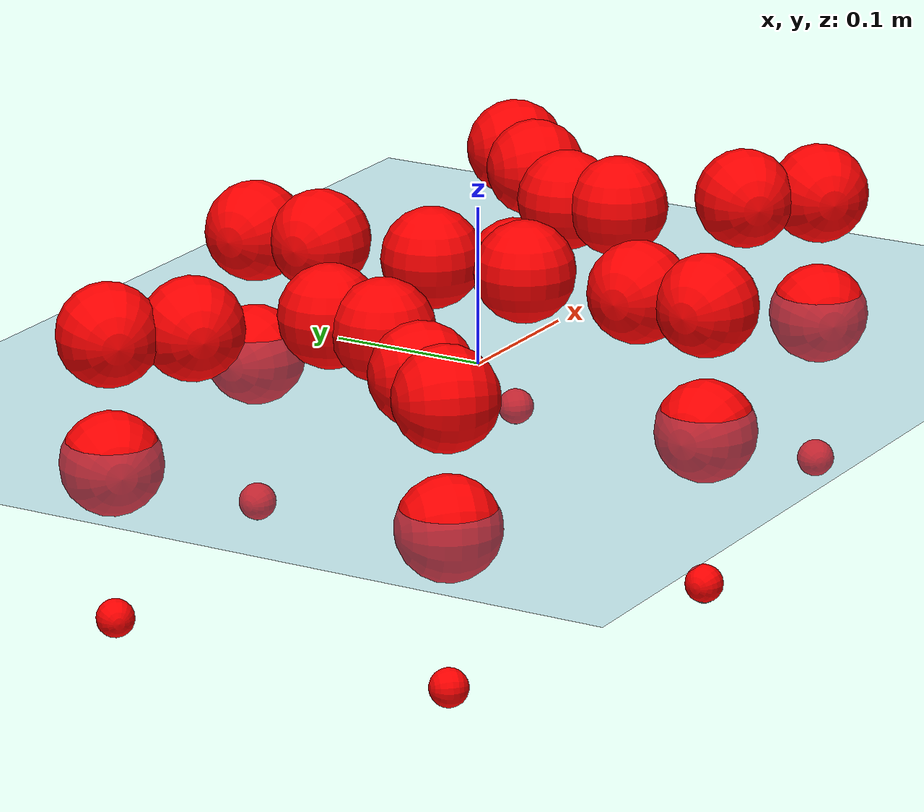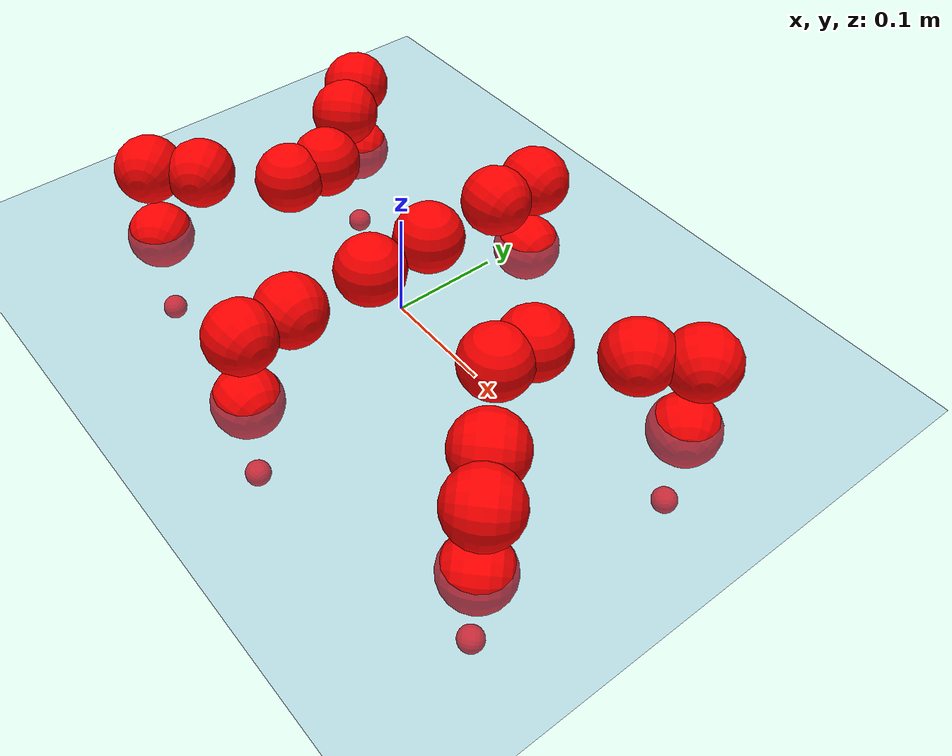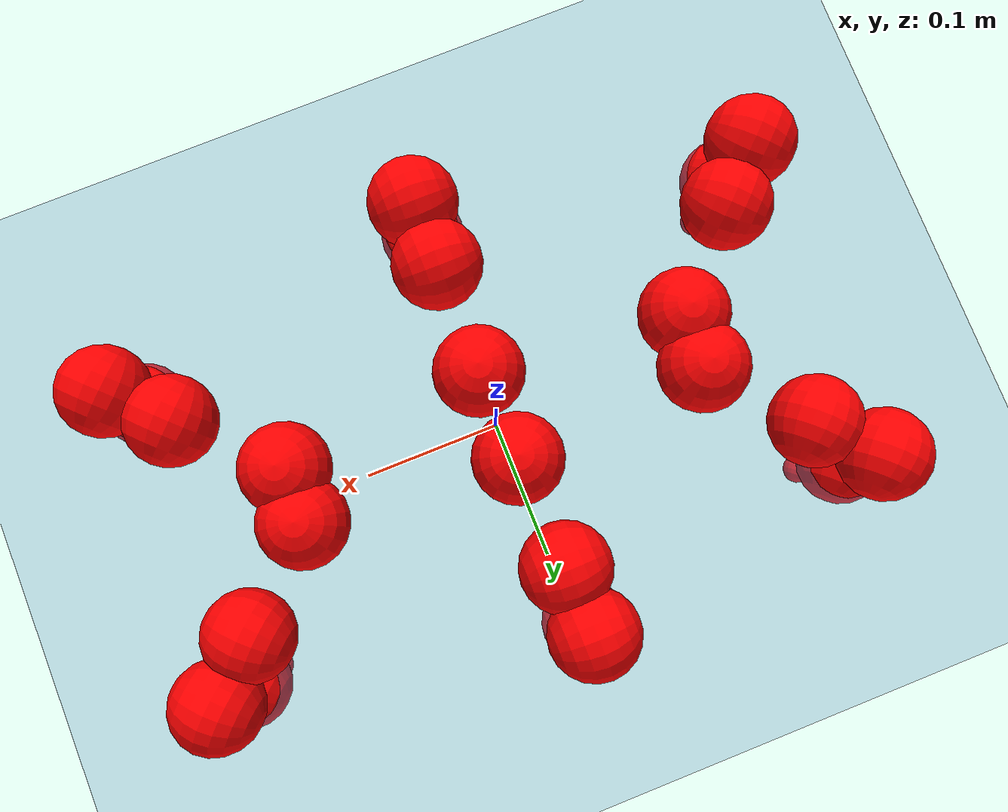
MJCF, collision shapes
<mujoco model="Golem">
  <compiler angle="radian" assetdir="assets" balanceinertia="true" inertiafromgeom="false"/>

  <option timestep="0.005" density="1.2" viscosity="2e-05"/>

  <size nkey="1"/>

  <visual>
    <quality shadowsize="8192"/>
    <map shadowclip="0.5"/>
  </visual>

  <default>
    <default class="/">
      <joint armature="0.01" damping="0.01" frictionloss="0.01"/>
      <geom contype="0" conaffinity="0" group="1" solref="-1000 -80"/>
      <site size="0.01 0.005 0.005" group="5"/>
      <general forcelimited="true" biastype="affine" gainprm="25" biasprm="0 -25 -0.5"/>
      <default class="visual">
        <geom type="mesh" group="2"/>
      </default>
      <default class="collision">
        <geom group="3"/>
      </default>
      <default class="foot">
        <geom size="0.01 0 0" condim="6" group="4" priority="1" solimp="0.015 1 0.01"/>
      </default>
      <default class="reward_collision_sphere">
        <geom group="5" rgba="1 0 0 1"/>
      </default>
    </default>
  </default>

  <asset>
    <texture type="skybox" colorspace="auto" name="//unnamed_texture_0" builtin="gradient" rgb1="0.95 0.95 0.95" rgb2="0.95 0.95 0.95" width="100" height="600"/>
    <texture type="2d" colorspace="auto" name="texplane" builtin="checker" rgb1="0.345 0.575 0.748" rgb2="0.345 0.575 0.748" markrgb="1 1 1" width="512" height="512"/>
    <material name="MatPlane" class="/" texture="texplane" texuniform="true" texrepeat="2 2" specular="0.9"/>
    <mesh name="body" class="/" file="body.stl" scale="0.001 0.001 0.001"/>
    <mesh name="coxa" class="/" file="coxa.stl" scale="0.001 0.001 0.001"/>
    <mesh name="femur" class="/" file="femur.stl" scale="0.001 0.001 0.001"/>
    <mesh name="tibia" class="/" file="tibia.stl" scale="0.001 0.001 0.001"/>
    <mesh name="tarsus" class="/" file="tarsus.stl" scale="0.001 0.001 0.001"/>
  </asset>

  <worldbody>
    <geom name="floor" class="/" size="100 100 0.125" type="plane" group="0" material="MatPlane"/>
    <light name="toplight_shadow" class="/" pos="0 0 5" dir="0.0990148 0.0990148 -0.990148" type="directional" ambient="0.04 0.04 0.04" diffuse="0.55 0.55 0.55" specular="0.12 0.12 0.12"/>
    <light name="toplight_fill" class="/" pos="0 0 5" dir="0.0990148 0.0990148 -0.990148" type="directional" castshadow="false" ambient="0.04 0.04 0.04" diffuse="0.3 0.3 0.3" specular="0.08 0.08 0.08"/>
    <body name="trunk" pos="0.00017532 -0.000137707 -0.000332482" quat="1 -0.000866503 0.000285543 0.000210375">
      <inertial pos="-0.0004628 -0.000220909 -0.00363067" quat="1 -0.000224275 0.000530938 7.61843e-06" mass="1.85403" diaginertia="0.00612401 0.000175937 0.0106855"/>
      <joint name="//unnamed_joint_0" type="free"/>
      <geom name="//unnamed_geom_1" class="/" pos="0 0 0.0649131" quat="1 0 0 0" type="mesh" rgba="0.9 0.9 0.9 1" mesh="body"/>
      <site name="imu" class="/" pos="0.125941 0.00284774 0.101226" size="0.00788868"/>
      <camera name="track" class="/" pos="0 -0.891308 0" quat="0.707107 0.707107 0 0" mode="trackcom"/>
      <camera name="ego_camera" class="/" pos="0.117869 0 0.101427" quat="-0.5 -0.5 0.5 0.5"/>
      <body name="coxa_RR" pos="-0.162216 -0.037066 0.0650434" quat="0.382161 -0.000260611 0.00075428 -0.924095">
        <inertial pos="-0.000318266 0.000270743 0.00118653" quat="0.999999 0.000399963 -7.4502e-05 -0.00111704" mass="0.0990141" diaginertia="0.0061635 0.000176384 0.0108455"/>
        <joint name="coxa_joint_RR" class="/" pos="0 0 0" axis="-0.00138276 0.00575449 -0.999982" range="-3.14804 3.11067" armature="0.00788049" damping="0.00363953" frictionloss="0.00768412"/>
        <geom name="//unnamed_geom_2" class="/" type="mesh" rgba="0.2 0.2 0.2 1" mesh="coxa"/>
        <geom name="//unnamed_geom_3" class="reward_collision_sphere" size="0.0315547" pos="-0.0272005 0 0"/>
        <body name="femur_RR" pos="0.0552495 0.00211398 -0.00121591" quat="0.500023 -0.500009 0.500072 0.499895">
          <inertial pos="-0.000183366 0.000121954 0.000193484" quat="0.999999 0.00088601 -0.000209483 0.00141125" mass="0.0984846" diaginertia="0.00607418 0.000174572 0.0108652"/>
          <joint name="femur_joint_RR" class="/" pos="0 0 0" axis="-4.46427e-05 -0.00294401 -0.999996" range="-3.11305 3.13554" armature="0.00750805" damping="0.0011786" frictionloss="0.00818589"/>
          <geom name="//unnamed_geom_4" class="/" type="mesh" rgba="0.9 0.9 0.9 1" mesh="femur"/>
          <geom name="//unnamed_geom_5" class="reward_collision_sphere" size="0.0315547"/>
          <body name="tibia_RR" pos="-0.000792287 -0.0474803 0.00183169" quat="7.34269e-06 1 -5.33536e-06 -1.47481e-06">
            <inertial pos="0.00056533 -5.56648e-05 0.000300554" quat="0.999998 -0.000450148 -0.00159159 0.00104258" mass="0.0990753" diaginertia="0.00619601 0.000175479 0.0106281"/>
            <joint name="tibia_joint_RR" class="/" pos="0 0 0" axis="0.000840072 -0.00611678 0.999981" range="-3.10983 3.13666" armature="0.00766392" damping="0" frictionloss="0.00775137"/>
            <geom name="//unnamed_geom_6" class="/" type="mesh" rgba="0.2 0.2 0.2 1" mesh="tibia"/>
            <geom name="//unnamed_geom_7" class="reward_collision_sphere" size="0.0315547"/>
            <body name="tarsus_RR" pos="0.0781014 0.000176692 -0.00140391" quat="1 8.83762e-07 0.000260693 0.000324569">
              <inertial pos="0.055624 0.000475979 -4.11625e-05" quat="0.500666 0.49881 0.500126 0.500396" mass="0.0969202" diaginertia="0.00601622 0.000175433 0.0105821"/>
              <joint name="tarsus_joint_RR" class="/" pos="0 0 0" axis="-0.000824824 -0.000323205 1" range="-3.12013 3.13074" armature="0.00813309" damping="0" frictionloss="0.00794844"/>
              <geom name="//unnamed_geom_8" class="/" type="mesh" rgba="0.9 0.9 0.9 1" mesh="tarsus"/>
              <geom name="foot_1" class="foot" size="0.0075001" pos="0.101548 0 0" quat="0 -0.707107 0 0.707107"/>
              <geom name="//unnamed_geom_10" class="reward_collision_sphere" size="0.0315547"/>
              <geom name="//unnamed_geom_11" class="reward_collision_sphere" size="0.011833" pos="0.0974684 0 0"/>
              <site name="foot_1" class="foot" pos="0.101548 0 0" quat="0 -0.707107 0 0.707107" size="0.00788868"/>
            </body>
          </body>
        </body>
      </body>
      <body name="coxa_RM" pos="-0.000276587 -0.0594975 0.0648312" quat="0.707518 0.000223133 -0.000128017 -0.706695">
        <inertial pos="-0.000477755 -0.0010097 0.000222889" quat="0.999998 -0.00046813 0.00188417 0.000224795" mass="0.0976359" diaginertia="0.00605521 0.00017712 0.0108549"/>
        <joint name="coxa_joint_RM" class="/" pos="0 0 0" axis="0.00588008 -0.00435148 -0.999973" range="-3.14138 3.15254" armature="0.00856159" damping="0.00433249" frictionloss="0.00785894"/>
        <geom name="//unnamed_geom_12" class="/" type="mesh" rgba="0.2 0.2 0.2 1" mesh="coxa"/>
        <geom name="//unnamed_geom_13" class="reward_collision_sphere" size="0.0315547" pos="-0.0272005 0 0"/>
        <body name="femur_RM" pos="0.0515167 -0.000646851 -0.000576563" quat="0.499991 -0.499955 0.500019 0.500036">
          <inertial pos="-0.000327041 -0.000425092 0.000166747" quat="0.999999 0.00102144 -0.001178 -0.000179534" mass="0.0973164" diaginertia="0.0060234 0.000178485 0.0108979"/>
          <joint name="femur_joint_RM" class="/" pos="0 0 0" axis="0.00190128 -0.0031604 -0.999993" range="-3.12211 3.14286" armature="0.00772605" damping="0.00105036" frictionloss="0.00783805"/>
          <geom name="//unnamed_geom_14" class="/" type="mesh" rgba="0.9 0.9 0.9 1" mesh="femur"/>
          <geom name="//unnamed_geom_15" class="reward_collision_sphere" size="0.0315547"/>
          <body name="tibia_RM" pos="0.000896403 -0.0466822 -0.000430049" quat="-6.8959e-05 1 -1.78495e-05 0.000353236">
            <inertial pos="-0.000833076 -0.000866626 -0.0010281" quat="0.99999 -0.00146535 0.00325469 0.0025608" mass="0.0976684" diaginertia="0.00620135 0.000175474 0.0107965"/>
            <joint name="tibia_joint_RM" class="/" pos="0 0 0" axis="0.00218101 0.000221223 0.999998" range="-3.13685 3.15728" armature="0.00834481" damping="0.000281447" frictionloss="0.00857803"/>
            <geom name="//unnamed_geom_16" class="/" type="mesh" rgba="0.2 0.2 0.2 1" mesh="tibia"/>
            <geom name="//unnamed_geom_17" class="reward_collision_sphere" size="0.0315547"/>
            <body name="tarsus_RM" pos="0.0784073 0.000879935 0.00155225" quat="1 3.53449e-06 0.00012236 -4.10318e-05">
              <inertial pos="0.0543301 0.00157723 0.000142667" quat="0.500145 0.500084 0.500165 0.499605" mass="0.0982733" diaginertia="0.00606356 0.000173756 0.0107705"/>
              <joint name="tarsus_joint_RM" class="/" pos="0 0 0" axis="-0.000682681 -0.000300347 1" range="-3.10921 3.12052" armature="0.00861076" damping="0.000341369" frictionloss="0.00791054"/>
              <geom name="//unnamed_geom_18" class="/" type="mesh" rgba="0.9 0.9 0.9 1" mesh="tarsus"/>
              <geom name="foot_2" class="foot" size="0.00833149" pos="0.101548 0 0" quat="0 -0.707107 0 0.707107"/>
              <geom name="//unnamed_geom_20" class="reward_collision_sphere" size="0.0315547"/>
              <geom name="//unnamed_geom_21" class="reward_collision_sphere" size="0.011833" pos="0.0974684 0 0"/>
              <site name="foot_2" class="foot" pos="0.101548 0 0" quat="0 -0.707107 0 0.707107" size="0.00788868"/>
            </body>
          </body>
        </body>
      </body>
      <body name="coxa_RF" pos="0.161629 -0.0377869 0.0670062" quat="0.923941 -9.56259e-05 0.000321083 -0.382535">
        <inertial pos="6.73363e-05 -0.00221494 1.11997e-05" quat="1 6.20978e-05 -0.000301112 0.000221525" mass="0.099314" diaginertia="0.00614606 0.000176262 0.0107596"/>
        <joint name="coxa_joint_RF" class="/" pos="0 0 0" axis="0.00321871 0.00333894 -0.999989" range="-3.11886 3.16532" armature="0.00807831" damping="0" frictionloss="0.00768815"/>
        <geom name="//unnamed_geom_22" class="/" type="mesh" rgba="0.2 0.2 0.2 1" mesh="coxa"/>
        <geom name="//unnamed_geom_23" class="reward_collision_sphere" size="0.0315547" pos="-0.0272005 0 0"/>
        <body name="femur_RF" pos="0.0562484 0.00125765 -0.0017619" quat="0.499478 -0.500222 0.500194 0.500106">
          <inertial pos="6.41498e-05 -0.000520075 0.00139711" quat="0.999972 -0.00427464 -0.00589789 0.00173324" mass="0.09879" diaginertia="0.00616463 0.000172666 0.0107634"/>
          <joint name="femur_joint_RF" class="/" pos="0 0 0" axis="0.00249403 0.00300518 -0.999992" range="-3.13976 3.13703" armature="0.00801827" damping="0" frictionloss="0.0073907"/>
          <geom name="//unnamed_geom_24" class="/" type="mesh" rgba="0.9 0.9 0.9 1" mesh="femur"/>
          <geom name="//unnamed_geom_25" class="reward_collision_sphere" size="0.0315547"/>
          <body name="tibia_RF" pos="0.000321539 -0.04943 -0.000224189" quat="-9.81414e-05 1 6.94856e-05 0.000139529">
            <inertial pos="0.000302542 -0.000382606 0.00093038" quat="1 -0.000271193 -0.000579582 3.73958e-05" mass="0.0977645" diaginertia="0.00610141 0.000177431 0.0108281"/>
            <joint name="tibia_joint_RF" class="/" pos="0 0 0" axis="0.00227123 -0.00266463 0.999994" range="-3.13545 3.14286" armature="0.00817969" damping="0.00939699" frictionloss="0.00788261"/>
            <geom name="//unnamed_geom_26" class="/" type="mesh" rgba="0.2 0.2 0.2 1" mesh="tibia"/>
            <geom name="//unnamed_geom_27" class="reward_collision_sphere" size="0.0315547"/>
            <body name="tarsus_RF" pos="0.0796384 0.000969547 0.000322844" quat="1 0.000424323 0.00047586 -0.000211134">
              <inertial pos="0.0529582 9.54948e-05 0.00177959" quat="0.49986 0.499805 0.500917 0.499418" mass="0.0972291" diaginertia="0.00611646 0.000171825 0.0105666"/>
              <joint name="tarsus_joint_RF" class="/" pos="0 0 0" axis="-0.0096403 -0.00313207 0.999949" range="-3.10881 3.12876" armature="0.00789863" damping="0" frictionloss="0.00783259"/>
              <geom name="//unnamed_geom_28" class="/" type="mesh" rgba="0.9 0.9 0.9 1" mesh="tarsus"/>
              <geom name="foot_3" class="foot" size="0.00783953" pos="0.101548 0 0" quat="0 -0.707107 0 0.707107"/>
              <geom name="//unnamed_geom_30" class="reward_collision_sphere" size="0.0315547"/>
              <geom name="//unnamed_geom_31" class="reward_collision_sphere" size="0.011833" pos="0.0974684 0 0"/>
              <site name="foot_3" class="foot" pos="0.101548 0 0" quat="0 -0.707107 0 0.707107" size="0.00788868"/>
            </body>
          </body>
        </body>
      </body>
      <body name="coxa_LR" pos="-0.15985 0.0395363 0.0672378" quat="0.38265 0.000289342 0.000646373 0.923893">
        <inertial pos="0.00152924 -0.00050523 0.00146924" quat="0.999998 0.00112136 -0.000323044 -0.00155118" mass="0.0972321" diaginertia="0.00612202 0.000174131 0.0106326"/>
        <joint name="coxa_joint_LR" class="/" pos="0 0 0" axis="0.00277337 -0.00488678 -0.999984" range="-3.13772 3.14683" armature="0.00825464" damping="0.00744584" frictionloss="0.00800829"/>
        <geom name="//unnamed_geom_32" class="/" type="mesh" rgba="0.2 0.2 0.2 1" mesh="coxa"/>
        <geom name="//unnamed_geom_33" class="reward_collision_sphere" size="0.0315547" pos="-0.0272005 0 0"/>
        <body name="femur_LR" pos="0.0549868 -0.00399873 -0.0021233" quat="0.500244 -0.499335 0.500178 0.500243">
          <inertial pos="-0.00112353 -0.00053719 0.000291872" quat="0.999999 -0.00156948 -4.74785e-05 0.00018467" mass="0.0971841" diaginertia="0.00609187 0.000174944 0.0105507"/>
          <joint name="femur_joint_LR" class="/" pos="0 0 0" axis="-0.0030782 0.000452974 0.999995" range="-3.15629 3.17706" armature="0.00776396" damping="0.00804635" frictionloss="0.00858237"/>
          <geom name="//unnamed_geom_34" class="/" type="mesh" rgba="0.9 0.9 0.9 1" mesh="femur"/>
          <geom name="//unnamed_geom_35" class="reward_collision_sphere" size="0.0315547"/>
          <body name="tibia_LR" pos="0.00033948 -0.0499265 -0.00249732" quat="-0.000104274 1 0.000161506 -0.000203534">
            <inertial pos="-0.00102473 -2.48664e-05 0.000200334" quat="0.999997 -0.000938772 -0.00150688 0.00183112" mass="0.0989517" diaginertia="0.00611242 0.0001756 0.0107244"/>
            <joint name="tibia_joint_LR" class="/" pos="0 0 0" axis="0.000629898 0.000470273 -1" range="-3.15191 3.11787" armature="0.00728177" damping="0" frictionloss="0.00819613"/>
            <geom name="//unnamed_geom_36" class="/" type="mesh" rgba="0.2 0.2 0.2 1" mesh="tibia"/>
            <geom name="//unnamed_geom_37" class="reward_collision_sphere" size="0.0315547"/>
            <body name="tarsus_LR" pos="0.0796697 -0.000249091 3.16768e-05" quat="1 1.5353e-05 0.000280741 7.09366e-05">
              <inertial pos="0.055697 0.000994364 0.000288435" quat="0.499492 0.500509 0.499946 0.500052" mass="0.0983404" diaginertia="0.00611181 0.000177723 0.010681"/>
              <joint name="tarsus_joint_LR" class="/" pos="0 0 0" axis="-0.001876 -0.000718276 -0.999998" range="-3.11154 3.13739" armature="0.00784224" damping="0" frictionloss="0.0080571"/>
              <geom name="//unnamed_geom_38" class="/" type="mesh" rgba="0.9 0.9 0.9 1" mesh="tarsus"/>
              <geom name="foot_4" class="foot" size="0.00756572" pos="0.101548 0 0" quat="0.707107 0 -0.707107 0"/>
              <geom name="//unnamed_geom_40" class="reward_collision_sphere" size="0.0315547"/>
              <geom name="//unnamed_geom_41" class="reward_collision_sphere" size="0.011833" pos="0.0974684 0 0"/>
              <site name="foot_4" class="foot" pos="0.101548 0 0" quat="0.707107 0 -0.707107 0" size="0.00788868"/>
            </body>
          </body>
        </body>
      </body>
      <body name="coxa_LM" pos="-0.00308933 0.0588273 0.0646127" quat="0.706886 0.000403402 0.00110281 0.707327">
        <inertial pos="0.0011605 -0.000169017 0.000442116" quat="0.999997 0.00246317 0.000712408 -0.000605464" mass="0.101655" diaginertia="0.00641011 0.00018021 0.0108617"/>
        <joint name="coxa_joint_LM" class="/" pos="0 0 0" axis="0.000367236 0.00121236 -0.999999" stiffness="0.00389336" range="-3.15114 3.13761" armature="0.00793732" damping="0.00695181" frictionloss="0.0080709"/>
        <geom name="//unnamed_geom_42" class="/" type="mesh" rgba="0.2 0.2 0.2 1" mesh="coxa"/>
        <geom name="//unnamed_geom_43" class="reward_collision_sphere" size="0.0315547" pos="-0.0272005 0 0"/>
        <body name="femur_LM" pos="0.0509721 0.00230376 0.000306033" quat="0.499959 -0.500176 0.500018 0.499847">
          <inertial pos="-7.88632e-05 7.44909e-05 -0.000251727" quat="0.999996 0.000854796 -0.00136205 0.00210916" mass="0.0960305" diaginertia="0.00605341 0.000171626 0.0104997"/>
          <joint name="femur_joint_LM" class="/" pos="0 0 0" axis="-5.26859e-05 -0.000225628 1" range="-3.14609 3.1299" armature="0.00818804" damping="0" frictionloss="0.00775127"/>
          <geom name="//unnamed_geom_44" class="/" type="mesh" rgba="0.9 0.9 0.9 1" mesh="femur"/>
          <geom name="//unnamed_geom_45" class="reward_collision_sphere" size="0.0315547"/>
          <body name="tibia_LM" pos="0.000922342 -0.0465823 0.00116352" quat="0.000114756 1 -2.80112e-05 0.000201796">
            <inertial pos="-0.00156012 -2.56643e-05 0.000255904" quat="1 5.36661e-05 -1.09824e-05 6.42993e-05" mass="0.098775" diaginertia="0.00607897 0.000175178 0.0108028"/>
            <joint name="tibia_joint_LM" class="/" pos="0 0 0" axis="-0.0013186 0.000697313 -0.999999" stiffness="0.000311774" range="-3.13613 3.13983" armature="0.00793207" damping="0.000661292" frictionloss="0.00814954"/>
            <geom name="//unnamed_geom_46" class="/" type="mesh" rgba="0.2 0.2 0.2 1" mesh="tibia"/>
            <geom name="//unnamed_geom_47" class="reward_collision_sphere" size="0.0315547"/>
            <body name="tarsus_LM" pos="0.0803409 0.000332428 -0.00110523" quat="1 -0.000115913 0.000119551 0.000101529">
              <inertial pos="0.0551618 0.000252448 -2.70584e-05" quat="0.50038 0.499316 0.498374 0.501922" mass="0.0990119" diaginertia="0.0061888 0.000176594 0.0108578"/>
              <joint name="tarsus_joint_LM" class="/" pos="0 0 0" axis="-0.00028919 -0.000234162 -1" stiffness="0.00167628" range="-3.14958 3.13654" armature="0.0078826" damping="0.0058145" frictionloss="0.00765003"/>
              <geom name="//unnamed_geom_48" class="/" type="mesh" rgba="0.9 0.9 0.9 1" mesh="tarsus"/>
              <geom name="foot_5" class="foot" size="0.00801115" pos="0.101548 0 0" quat="0.707107 0 -0.707107 0"/>
              <geom name="//unnamed_geom_50" class="reward_collision_sphere" size="0.0315547"/>
              <geom name="//unnamed_geom_51" class="reward_collision_sphere" size="0.011833" pos="0.0974684 0 0"/>
              <site name="foot_5" class="foot" pos="0.101548 0 0" quat="0.707107 0 -0.707107 0" size="0.00788868"/>
            </body>
          </body>
        </body>
      </body>
      <body name="coxa_LF" pos="0.163161 0.0381478 0.0653275" quat="0.923942 -9.21119e-05 1.55683e-05 0.382532">
        <inertial pos="-0.000661396 8.82268e-05 -0.000266305" quat="0.999998 0.00164788 0.000187863 -0.000559566" mass="0.097376" diaginertia="0.00611151 0.000173132 0.0106674"/>
        <joint name="coxa_joint_LF" class="/" pos="0 0 0" axis="-0.00199366 0.00151216 -0.999997" range="-3.13672 3.15665" armature="0.00792632" damping="0" frictionloss="0.00757094"/>
        <geom name="//unnamed_geom_52" class="/" type="mesh" rgba="0.2 0.2 0.2 1" mesh="coxa"/>
        <geom name="//unnamed_geom_53" class="reward_collision_sphere" size="0.0315547" pos="-0.0272005 0 0"/>
        <body name="femur_LF" pos="0.0536221 -0.00193676 -0.00203525" quat="0.499953 -0.499763 0.500191 0.500093">
          <inertial pos="0.000292336 -0.000174371 -0.00056697" quat="0.999959 0.0017481 -0.00809404 -0.0036575" mass="0.0983695" diaginertia="0.00618891 0.000173144 0.0108085"/>
          <joint name="femur_joint_LF" class="/" pos="0 0 0" axis="0.000484503 -0.00167902 0.999998" range="-3.13871 3.15712" armature="0.00772341" damping="0" frictionloss="0.00713246"/>
          <geom name="//unnamed_geom_54" class="/" type="mesh" rgba="0.9 0.9 0.9 1" mesh="femur"/>
          <geom name="//unnamed_geom_55" class="reward_collision_sphere" size="0.0315547"/>
          <body name="tibia_LF" pos="-7.73892e-06 -0.0488009 0.000103156" quat="-4.33493e-05 1 1.43282e-06 0.000154241">
            <inertial pos="0.00020001 -0.000443706 -8.49526e-05" quat="0.999991 0.00203622 -0.00339559 -0.00150105" mass="0.0977261" diaginertia="0.00617771 0.000177448 0.0108262"/>
            <joint name="tibia_joint_LF" class="/" pos="0 0 0" axis="-0.000704991 -0.00151576 -0.999999" range="-3.17372 3.14183" armature="0.00756973" damping="0" frictionloss="0.00796613"/>
            <geom name="//unnamed_geom_56" class="/" type="mesh" rgba="0.2 0.2 0.2 1" mesh="tibia"/>
            <geom name="//unnamed_geom_57" class="reward_collision_sphere" size="0.0315547"/>
            <body name="tarsus_LF" pos="0.0802729 -8.0206e-05 0.000328169" quat="1 -8.11922e-05 5.68276e-05 -1.81071e-05">
              <inertial pos="0.0566649 0.000845319 0.00201646" quat="0.500746 0.499899 0.499985 0.499369" mass="0.0992562" diaginertia="0.00614258 0.000177926 0.0109341"/>
              <joint name="tarsus_joint_LF" class="/" pos="0 0 0" axis="-0.000155154 -0.00276542 -0.999996" stiffness="0.0272278" range="-3.13722 3.12401" armature="0.00789924" damping="0.0263553" frictionloss="0.00808358"/>
              <geom name="//unnamed_geom_58" class="/" type="mesh" rgba="0.9 0.9 0.9 1" mesh="tarsus"/>
              <geom name="foot_6" class="foot" size="0.00794148" pos="0.101548 0 0" quat="0.707107 0 -0.707107 0"/>
              <geom name="//unnamed_geom_60" class="reward_collision_sphere" size="0.0315547"/>
              <geom name="//unnamed_geom_61" class="reward_collision_sphere" size="0.011833" pos="0.0974684 0 0"/>
              <site name="foot_6" class="foot" pos="0.101548 0 0" quat="0.707107 0 -0.707107 0" size="0.00788868"/>
            </body>
          </body>
        </body>
      </body>
    </body>
  </worldbody>

  <contact>
    <pair class="/" geom1="floor" geom2="foot_1" name="//unnamed_contact_0"/>
    <pair class="/" geom1="floor" geom2="foot_2" name="//unnamed_contact_1"/>
    <pair class="/" geom1="floor" geom2="foot_3" name="//unnamed_contact_2"/>
    <pair class="/" geom1="floor" geom2="foot_4" name="//unnamed_contact_3"/>
    <pair class="/" geom1="floor" geom2="foot_5" name="//unnamed_contact_4"/>
    <pair class="/" geom1="floor" geom2="foot_6" name="//unnamed_contact_5"/>
  </contact>

  <actuator>
    <general name="coxa_joint_RR" class="/" joint="coxa_joint_RR" forcerange="-5.77937 5.77937" gainprm="18.1648" biasprm="0 -18.1648 -0.393585"/>
    <general name="femur_joint_RR" class="/" joint="femur_joint_RR" forcerange="-5.5507 5.5507" gainprm="18.1648" biasprm="0 -18.1648 -0.393585"/>
    <general name="tibia_joint_RR" class="/" joint="tibia_joint_RR" forcerange="-5.83334 5.83334" gainprm="18.1648" biasprm="0 -18.1648 -0.393585"/>
    <general name="tarsus_joint_RR" class="/" joint="tarsus_joint_RR" forcerange="-5.78088 5.78088" gainprm="18.1648" biasprm="0 -18.1648 -0.393585"/>
    <general name="coxa_joint_RM" class="/" joint="coxa_joint_RM" forcerange="-5.79371 5.79371" gainprm="18.1648" biasprm="0 -18.1648 -0.393585"/>
    <general name="femur_joint_RM" class="/" joint="femur_joint_RM" forcerange="-5.91723 5.91723" gainprm="18.1648" biasprm="0 -18.1648 -0.393585"/>
    <general name="tibia_joint_RM" class="/" joint="tibia_joint_RM" forcerange="-5.96714 5.96714" gainprm="18.1648" biasprm="0 -18.1648 -0.393585"/>
    <general name="tarsus_joint_RM" class="/" joint="tarsus_joint_RM" forcerange="-6.13267 6.13267" gainprm="18.1648" biasprm="0 -18.1648 -0.393585"/>
    <general name="coxa_joint_RF" class="/" joint="coxa_joint_RF" forcerange="-6.02375 6.02375" gainprm="18.1648" biasprm="0 -18.1648 -0.393585"/>
    <general name="femur_joint_RF" class="/" joint="femur_joint_RF" forcerange="-5.49043 5.49043" gainprm="18.1648" biasprm="0 -18.1648 -0.393585"/>
    <general name="tibia_joint_RF" class="/" joint="tibia_joint_RF" forcerange="-5.97172 5.97172" gainprm="18.1648" biasprm="0 -18.1648 -0.393585"/>
    <general name="tarsus_joint_RF" class="/" joint="tarsus_joint_RF" forcerange="-5.78643 5.78643" gainprm="18.1648" biasprm="0 -18.1648 -0.393585"/>
    <general name="coxa_joint_LR" class="/" joint="coxa_joint_LR" forcerange="-5.57201 5.57201" gainprm="18.1648" biasprm="0 -18.1648 -0.393585"/>
    <general name="femur_joint_LR" class="/" joint="femur_joint_LR" forcerange="-5.77801 5.77801" gainprm="18.1648" biasprm="0 -18.1648 -0.393585"/>
    <general name="tibia_joint_LR" class="/" joint="tibia_joint_LR" forcerange="-5.97042 5.97042" gainprm="18.1648" biasprm="0 -18.1648 -0.393585"/>
    <general name="tarsus_joint_LR" class="/" joint="tarsus_joint_LR" forcerange="-5.6511 5.6511" gainprm="18.1648" biasprm="0 -18.1648 -0.393585"/>
    <general name="coxa_joint_LM" class="/" joint="coxa_joint_LM" forcerange="-5.76242 5.76242" gainprm="18.1648" biasprm="0 -18.1648 -0.393585"/>
    <general name="femur_joint_LM" class="/" joint="femur_joint_LM" forcerange="-5.77619 5.77619" gainprm="18.1648" biasprm="0 -18.1648 -0.393585"/>
    <general name="tibia_joint_LM" class="/" joint="tibia_joint_LM" forcerange="-5.39328 5.39328" gainprm="18.1648" biasprm="0 -18.1648 -0.393585"/>
    <general name="tarsus_joint_LM" class="/" joint="tarsus_joint_LM" forcerange="-5.75353 5.75353" gainprm="18.1648" biasprm="0 -18.1648 -0.393585"/>
    <general name="coxa_joint_LF" class="/" joint="coxa_joint_LF" forcerange="-5.92616 5.92616" gainprm="18.1648" biasprm="0 -18.1648 -0.393585"/>
    <general name="femur_joint_LF" class="/" joint="femur_joint_LF" forcerange="-5.95939 5.95939" gainprm="18.1648" biasprm="0 -18.1648 -0.393585"/>
    <general name="tibia_joint_LF" class="/" joint="tibia_joint_LF" forcerange="-5.8216 5.8216" gainprm="18.1648" biasprm="0 -18.1648 -0.393585"/>
    <general name="tarsus_joint_LF" class="/" joint="tarsus_joint_LF" forcerange="-5.88143 5.88143" gainprm="18.1648" biasprm="0 -18.1648 -0.393585"/>
  </actuator>

  <sensor>
    <gyro site="imu" name="imu_angular_velocity"/>
    <velocimeter site="imu" name="imu_linear_velocity"/>
    <framelinvel objtype="site" objname="foot_1" name="foot_1_global_linear_velocity"/>
    <framelinvel objtype="site" objname="foot_2" name="foot_2_global_linear_velocity"/>
    <framelinvel objtype="site" objname="foot_3" name="foot_3_global_linear_velocity"/>
    <framelinvel objtype="site" objname="foot_4" name="foot_4_global_linear_velocity"/>
    <framelinvel objtype="site" objname="foot_5" name="foot_5_global_linear_velocity"/>
    <framelinvel objtype="site" objname="foot_6" name="foot_6_global_linear_velocity"/>
  </sensor>

  <keyframe>
    <key name="home" qpos="0 0 0.1457 1 0 0 0 0 0 0 0 0 0 0 0 0 0 0 0 0 0 0 0 0 0 0 0 0 0 0 0"/>
  </keyframe>
</mujoco>
